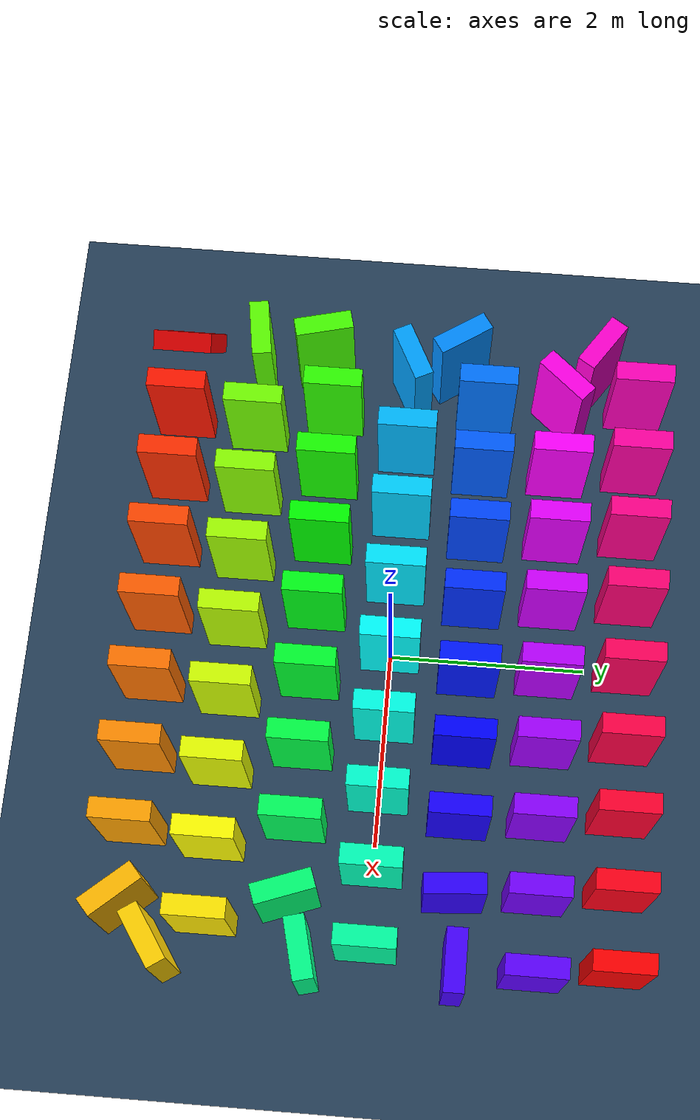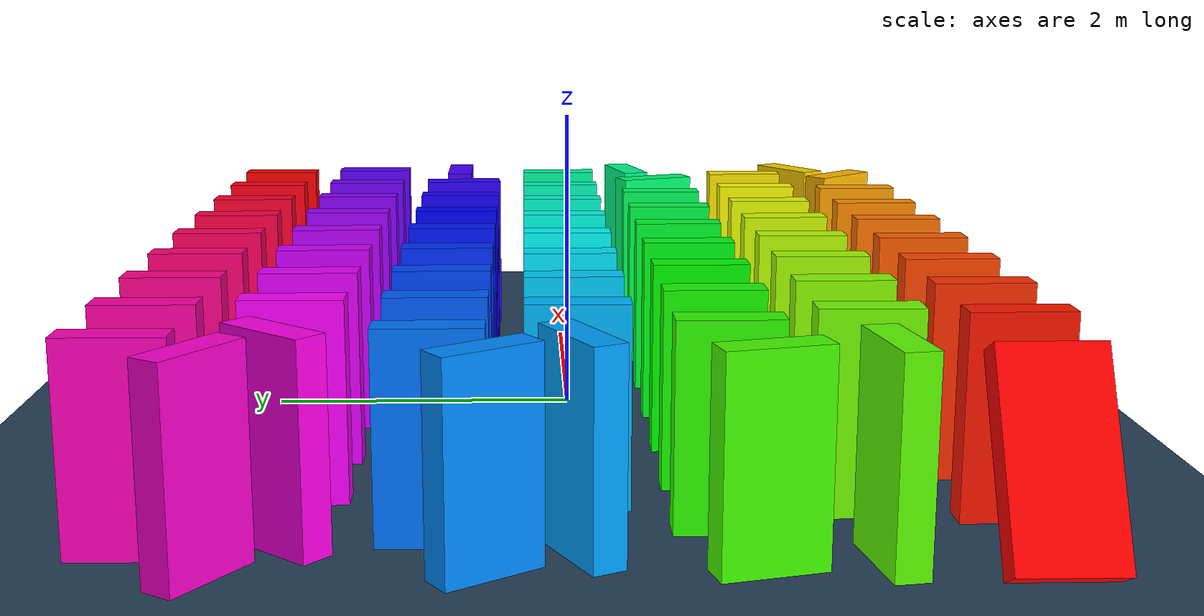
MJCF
<mujoco>
  <visual>
    <headlight diffuse="0.6 0.6 0.6" ambient="0.1 0.1 0.1" specular="0 0 0"/>
    <rgba haze="0.15 0.25 0.35 1"/>
    <global azimuth="120" elevation="-20"/>
  </visual>
  <asset>
    <texture type="skybox" builtin="gradient" rgb1="0.3 0.5 0.7" rgb2="0 0 0" width="512" height="3072"/>
    <texture type="2d" name="groundplane" builtin="checker" mark="edge" rgb1="0.2 0.3 0.4" rgb2="0.1 0.2 0.3" markrgb="0.8 0.8 0.8" width="300" height="300"/>
    <material name="groundplane" texture="groundplane" texuniform="true" texrepeat="5 5" reflectance="0.2"/>
  </asset>
  <worldbody>
    <light pos="0 0 1.5" dir="0 0 -1" directional="true"/>
    <geom name="floor" size="0 0 0.05" type="plane" material="groundplane"/>
    <body name="trigger" pos="-3.2000 -2.4000 0.5767" euler="0 28.0 0.0">
      <geom type="box" size="0.1000 0.3000 0.6000" rgba="1.000 0.000 0.000 1"/>
      <freejoint/>
    </body>
    <body name="domino_001" pos="-2.4500 -2.4000 0.6000" euler="0 0.0 0.0">
      <geom type="box" size="0.1000 0.3000 0.6000" rgba="1.000 0.091 0.000 1"/>
      <freejoint/>
    </body>
    <body name="domino_002" pos="-1.7000 -2.4000 0.6000" euler="0 0.0 0.0">
      <geom type="box" size="0.1000 0.3000 0.6000" rgba="1.000 0.182 0.000 1"/>
      <freejoint/>
    </body>
    <body name="domino_003" pos="-0.9500 -2.4000 0.6000" euler="0 0.0 0.0">
      <geom type="box" size="0.1000 0.3000 0.6000" rgba="1.000 0.273 0.000 1"/>
      <freejoint/>
    </body>
    <body name="domino_004" pos="-0.2000 -2.4000 0.6000" euler="0 0.0 0.0">
      <geom type="box" size="0.1000 0.3000 0.6000" rgba="1.000 0.364 0.000 1"/>
      <freejoint/>
    </body>
    <body name="domino_005" pos="0.5500 -2.4000 0.6000" euler="0 0.0 0.0">
      <geom type="box" size="0.1000 0.3000 0.6000" rgba="1.000 0.454 0.000 1"/>
      <freejoint/>
    </body>
    <body name="domino_006" pos="1.3000 -2.4000 0.6000" euler="0 0.0 0.0">
      <geom type="box" size="0.1000 0.3000 0.6000" rgba="1.000 0.545 0.000 1"/>
      <freejoint/>
    </body>
    <body name="domino_007" pos="2.0500 -2.4000 0.6000" euler="0 0.0 0.0">
      <geom type="box" size="0.1000 0.3000 0.6000" rgba="1.000 0.636 0.000 1"/>
      <freejoint/>
    </body>
    <body name="domino_008" pos="2.8000 -2.4000 0.6000" euler="0 0.0 41.2">
      <geom type="box" size="0.1000 0.3000 0.6000" rgba="1.000 0.727 0.000 1"/>
      <freejoint/>
    </body>
    <body name="domino_009" pos="3.2000 -2.0500 0.6000" euler="0 0.0 123.7">
      <geom type="box" size="0.1000 0.3000 0.6000" rgba="1.000 0.818 0.000 1"/>
      <freejoint/>
    </body>
    <body name="domino_010" pos="2.9000 -1.6000 0.6000" euler="0 0.0 180.0">
      <geom type="box" size="0.1000 0.3000 0.6000" rgba="1.000 0.909 0.000 1"/>
      <freejoint/>
    </body>
    <body name="domino_011" pos="2.1500 -1.6000 0.6000" euler="0 0.0 180.0">
      <geom type="box" size="0.1000 0.3000 0.6000" rgba="1.000 1.000 0.000 1"/>
      <freejoint/>
    </body>
    <body name="domino_012" pos="1.4000 -1.6000 0.6000" euler="0 0.0 180.0">
      <geom type="box" size="0.1000 0.3000 0.6000" rgba="0.909 1.000 0.000 1"/>
      <freejoint/>
    </body>
    <body name="domino_013" pos="0.6500 -1.6000 0.6000" euler="0 0.0 180.0">
      <geom type="box" size="0.1000 0.3000 0.6000" rgba="0.818 1.000 0.000 1"/>
      <freejoint/>
    </body>
    <body name="domino_014" pos="-0.1000 -1.6000 0.6000" euler="0 0.0 180.0">
      <geom type="box" size="0.1000 0.3000 0.6000" rgba="0.728 1.000 0.000 1"/>
      <freejoint/>
    </body>
    <body name="domino_015" pos="-0.8500 -1.6000 0.6000" euler="0 0.0 180.0">
      <geom type="box" size="0.1000 0.3000 0.6000" rgba="0.637 1.000 0.000 1"/>
      <freejoint/>
    </body>
    <body name="domino_016" pos="-1.6000 -1.6000 0.6000" euler="0 0.0 180.0">
      <geom type="box" size="0.1000 0.3000 0.6000" rgba="0.546 1.000 0.000 1"/>
      <freejoint/>
    </body>
    <body name="domino_017" pos="-2.3500 -1.6000 0.6000" euler="0 0.0 180.0">
      <geom type="box" size="0.1000 0.3000 0.6000" rgba="0.455 1.000 0.000 1"/>
      <freejoint/>
    </body>
    <body name="domino_018" pos="-3.1000 -1.6000 0.6000" euler="0 0.0 98.7">
      <geom type="box" size="0.1000 0.3000 0.6000" rgba="0.364 1.000 0.000 1"/>
      <freejoint/>
    </body>
    <body name="domino_019" pos="-3.2000 -0.9500 0.6000" euler="0 0.0 14.0">
      <geom type="box" size="0.1000 0.3000 0.6000" rgba="0.273 1.000 0.000 1"/>
      <freejoint/>
    </body>
    <body name="domino_020" pos="-2.6000 -0.8000 0.6000" euler="0 0.0 0.0">
      <geom type="box" size="0.1000 0.3000 0.6000" rgba="0.182 1.000 0.000 1"/>
      <freejoint/>
    </body>
    <body name="domino_021" pos="-1.8500 -0.8000 0.6000" euler="0 0.0 0.0">
      <geom type="box" size="0.1000 0.3000 0.6000" rgba="0.091 1.000 0.000 1"/>
      <freejoint/>
    </body>
    <body name="domino_022" pos="-1.1000 -0.8000 0.6000" euler="0 0.0 0.0">
      <geom type="box" size="0.1000 0.3000 0.6000" rgba="0.001 1.000 0.000 1"/>
      <freejoint/>
    </body>
    <body name="domino_023" pos="-0.3500 -0.8000 0.6000" euler="0 0.0 0.0">
      <geom type="box" size="0.1000 0.3000 0.6000" rgba="0.000 1.000 0.090 1"/>
      <freejoint/>
    </body>
    <body name="domino_024" pos="0.4000 -0.8000 0.6000" euler="0 0.0 0.0">
      <geom type="box" size="0.1000 0.3000 0.6000" rgba="0.000 1.000 0.181 1"/>
      <freejoint/>
    </body>
    <body name="domino_025" pos="1.1500 -0.8000 0.6000" euler="0 0.0 0.0">
      <geom type="box" size="0.1000 0.3000 0.6000" rgba="0.000 1.000 0.272 1"/>
      <freejoint/>
    </body>
    <body name="domino_026" pos="1.9000 -0.8000 0.6000" euler="0 0.0 0.0">
      <geom type="box" size="0.1000 0.3000 0.6000" rgba="0.000 1.000 0.363 1"/>
      <freejoint/>
    </body>
    <body name="domino_027" pos="2.6500 -0.8000 0.6000" euler="0 0.0 20.0">
      <geom type="box" size="0.1000 0.3000 0.6000" rgba="0.000 1.000 0.454 1"/>
      <freejoint/>
    </body>
    <body name="domino_028" pos="3.2000 -0.6000 0.6000" euler="0 0.0 104.0">
      <geom type="box" size="0.1000 0.3000 0.6000" rgba="0.000 1.000 0.545 1"/>
      <freejoint/>
    </body>
    <body name="domino_029" pos="3.0500 0.0000 0.6000" euler="0 0.0 180.0">
      <geom type="box" size="0.1000 0.3000 0.6000" rgba="0.000 1.000 0.636 1"/>
      <freejoint/>
    </body>
    <body name="domino_030" pos="2.3000 0.0000 0.6000" euler="0 0.0 180.0">
      <geom type="box" size="0.1000 0.3000 0.6000" rgba="0.000 1.000 0.727 1"/>
      <freejoint/>
    </body>
    <body name="domino_031" pos="1.5500 0.0000 0.6000" euler="0 0.0 180.0">
      <geom type="box" size="0.1000 0.3000 0.6000" rgba="0.000 1.000 0.818 1"/>
      <freejoint/>
    </body>
    <body name="domino_032" pos="0.8000 0.0000 0.6000" euler="0 0.0 180.0">
      <geom type="box" size="0.1000 0.3000 0.6000" rgba="0.000 1.000 0.908 1"/>
      <freejoint/>
    </body>
    <body name="domino_033" pos="0.0500 0.0000 0.6000" euler="0 0.0 180.0">
      <geom type="box" size="0.1000 0.3000 0.6000" rgba="0.000 1.000 0.999 1"/>
      <freejoint/>
    </body>
    <body name="domino_034" pos="-0.7000 0.0000 0.6000" euler="0 0.0 180.0">
      <geom type="box" size="0.1000 0.3000 0.6000" rgba="0.000 0.910 1.000 1"/>
      <freejoint/>
    </body>
    <body name="domino_035" pos="-1.4500 0.0000 0.6000" euler="0 0.0 180.0">
      <geom type="box" size="0.1000 0.3000 0.6000" rgba="0.000 0.819 1.000 1"/>
      <freejoint/>
    </body>
    <body name="domino_036" pos="-2.2000 0.0000 0.6000" euler="0 0.0 180.0">
      <geom type="box" size="0.1000 0.3000 0.6000" rgba="0.000 0.728 1.000 1"/>
      <freejoint/>
    </body>
    <body name="domino_037" pos="-2.9500 0.0000 0.6000" euler="0 0.0 116.6">
      <geom type="box" size="0.1000 0.3000 0.6000" rgba="0.000 0.637 1.000 1"/>
      <freejoint/>
    </body>
    <body name="domino_038" pos="-3.2000 0.5000 0.6000" euler="0 0.0 33.7">
      <geom type="box" size="0.1000 0.3000 0.6000" rgba="0.000 0.546 1.000 1"/>
      <freejoint/>
    </body>
    <body name="domino_039" pos="-2.7500 0.8000 0.6000" euler="0 0.0 0.0">
      <geom type="box" size="0.1000 0.3000 0.6000" rgba="0.000 0.455 1.000 1"/>
      <freejoint/>
    </body>
    <body name="domino_040" pos="-2.0000 0.8000 0.6000" euler="0 0.0 0.0">
      <geom type="box" size="0.1000 0.3000 0.6000" rgba="0.000 0.364 1.000 1"/>
      <freejoint/>
    </body>
    <body name="domino_041" pos="-1.2500 0.8000 0.6000" euler="0 0.0 0.0">
      <geom type="box" size="0.1000 0.3000 0.6000" rgba="0.000 0.274 1.000 1"/>
      <freejoint/>
    </body>
    <body name="domino_042" pos="-0.5000 0.8000 0.6000" euler="0 0.0 0.0">
      <geom type="box" size="0.1000 0.3000 0.6000" rgba="0.000 0.183 1.000 1"/>
      <freejoint/>
    </body>
    <body name="domino_043" pos="0.2500 0.8000 0.6000" euler="0 0.0 0.0">
      <geom type="box" size="0.1000 0.3000 0.6000" rgba="0.000 0.092 1.000 1"/>
      <freejoint/>
    </body>
    <body name="domino_044" pos="1.0000 0.8000 0.6000" euler="0 0.0 0.0">
      <geom type="box" size="0.1000 0.3000 0.6000" rgba="0.000 0.001 1.000 1"/>
      <freejoint/>
    </body>
    <body name="domino_045" pos="1.7500 0.8000 0.6000" euler="0 0.0 0.0">
      <geom type="box" size="0.1000 0.3000 0.6000" rgba="0.090 0.000 1.000 1"/>
      <freejoint/>
    </body>
    <body name="domino_046" pos="2.5000 0.8000 0.6000" euler="0 0.0 4.1">
      <geom type="box" size="0.1000 0.3000 0.6000" rgba="0.181 0.000 1.000 1"/>
      <freejoint/>
    </body>
    <body name="domino_047" pos="3.2000 0.8500 0.6000" euler="0 0.0 90.0">
      <geom type="box" size="0.1000 0.3000 0.6000" rgba="0.272 0.000 1.000 1"/>
      <freejoint/>
    </body>
    <body name="domino_048" pos="3.2000 1.6000 0.6000" euler="0 0.0 180.0">
      <geom type="box" size="0.1000 0.3000 0.6000" rgba="0.363 0.000 1.000 1"/>
      <freejoint/>
    </body>
    <body name="domino_049" pos="2.4500 1.6000 0.6000" euler="0 0.0 180.0">
      <geom type="box" size="0.1000 0.3000 0.6000" rgba="0.453 0.000 1.000 1"/>
      <freejoint/>
    </body>
    <body name="domino_050" pos="1.7000 1.6000 0.6000" euler="0 0.0 180.0">
      <geom type="box" size="0.1000 0.3000 0.6000" rgba="0.544 0.000 1.000 1"/>
      <freejoint/>
    </body>
    <body name="domino_051" pos="0.9500 1.6000 0.6000" euler="0 0.0 180.0">
      <geom type="box" size="0.1000 0.3000 0.6000" rgba="0.635 0.000 1.000 1"/>
      <freejoint/>
    </body>
    <body name="domino_052" pos="0.2000 1.6000 0.6000" euler="0 0.0 180.0">
      <geom type="box" size="0.1000 0.3000 0.6000" rgba="0.726 0.000 1.000 1"/>
      <freejoint/>
    </body>
    <body name="domino_053" pos="-0.5500 1.6000 0.6000" euler="0 0.0 180.0">
      <geom type="box" size="0.1000 0.3000 0.6000" rgba="0.817 0.000 1.000 1"/>
      <freejoint/>
    </body>
    <body name="domino_054" pos="-1.3000 1.6000 0.6000" euler="0 0.0 180.0">
      <geom type="box" size="0.1000 0.3000 0.6000" rgba="0.908 0.000 1.000 1"/>
      <freejoint/>
    </body>
    <body name="domino_055" pos="-2.0500 1.6000 0.6000" euler="0 0.0 180.0">
      <geom type="box" size="0.1000 0.3000 0.6000" rgba="0.999 0.000 1.000 1"/>
      <freejoint/>
    </body>
    <body name="domino_056" pos="-2.8000 1.6000 0.6000" euler="0 0.0 138.8">
      <geom type="box" size="0.1000 0.3000 0.6000" rgba="1.000 0.000 0.910 1"/>
      <freejoint/>
    </body>
    <body name="domino_057" pos="-3.2000 1.9500 0.6000" euler="0 0.0 56.3">
      <geom type="box" size="0.1000 0.3000 0.6000" rgba="1.000 0.000 0.819 1"/>
      <freejoint/>
    </body>
    <body name="domino_058" pos="-2.9000 2.4000 0.6000" euler="0 0.0 0.0">
      <geom type="box" size="0.1000 0.3000 0.6000" rgba="1.000 0.000 0.729 1"/>
      <freejoint/>
    </body>
    <body name="domino_059" pos="-2.1500 2.4000 0.6000" euler="0 0.0 0.0">
      <geom type="box" size="0.1000 0.3000 0.6000" rgba="1.000 0.000 0.638 1"/>
      <freejoint/>
    </body>
    <body name="domino_060" pos="-1.4000 2.4000 0.6000" euler="0 0.0 0.0">
      <geom type="box" size="0.1000 0.3000 0.6000" rgba="1.000 0.000 0.547 1"/>
      <freejoint/>
    </body>
    <body name="domino_061" pos="-0.6500 2.4000 0.6000" euler="0 0.0 0.0">
      <geom type="box" size="0.1000 0.3000 0.6000" rgba="1.000 0.000 0.456 1"/>
      <freejoint/>
    </body>
    <body name="domino_062" pos="0.1000 2.4000 0.6000" euler="0 0.0 0.0">
      <geom type="box" size="0.1000 0.3000 0.6000" rgba="1.000 0.000 0.365 1"/>
      <freejoint/>
    </body>
    <body name="domino_063" pos="0.8500 2.4000 0.6000" euler="0 0.0 0.0">
      <geom type="box" size="0.1000 0.3000 0.6000" rgba="1.000 0.000 0.274 1"/>
      <freejoint/>
    </body>
    <body name="domino_064" pos="1.6000 2.4000 0.6000" euler="0 0.0 0.0">
      <geom type="box" size="0.1000 0.3000 0.6000" rgba="1.000 0.000 0.183 1"/>
      <freejoint/>
    </body>
    <body name="domino_065" pos="2.3500 2.4000 0.6000" euler="0 0.0 0.0">
      <geom type="box" size="0.1000 0.3000 0.6000" rgba="1.000 0.000 0.092 1"/>
      <freejoint/>
    </body>
    <body name="domino_066" pos="3.1000 2.4000 0.6000" euler="0 0.0 0.0">
      <geom type="box" size="0.1000 0.3000 0.6000" rgba="1.000 0.000 0.001 1"/>
      <freejoint/>
    </body>
  </worldbody>
</mujoco>
